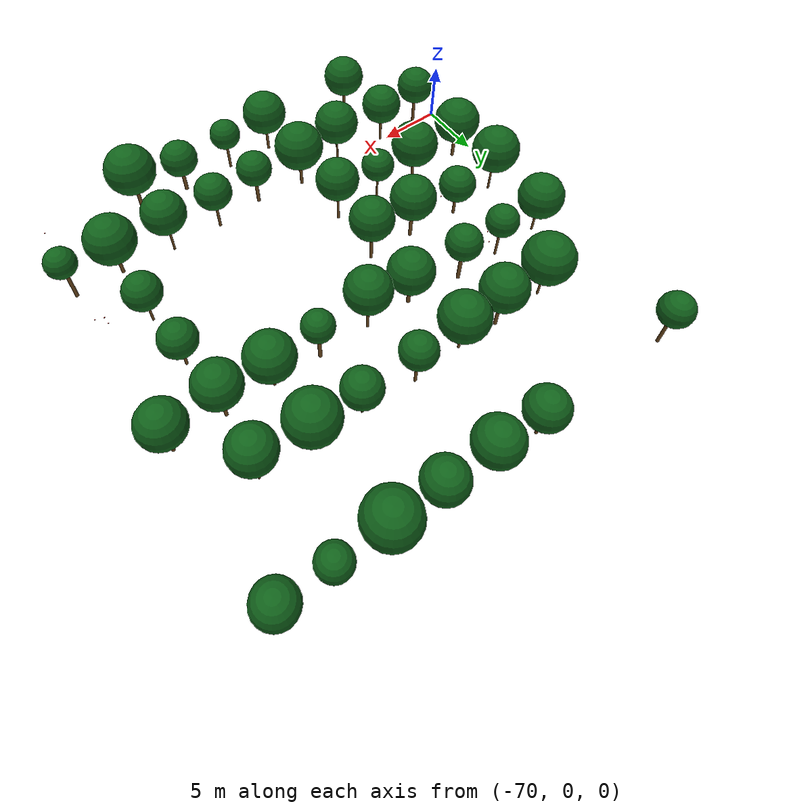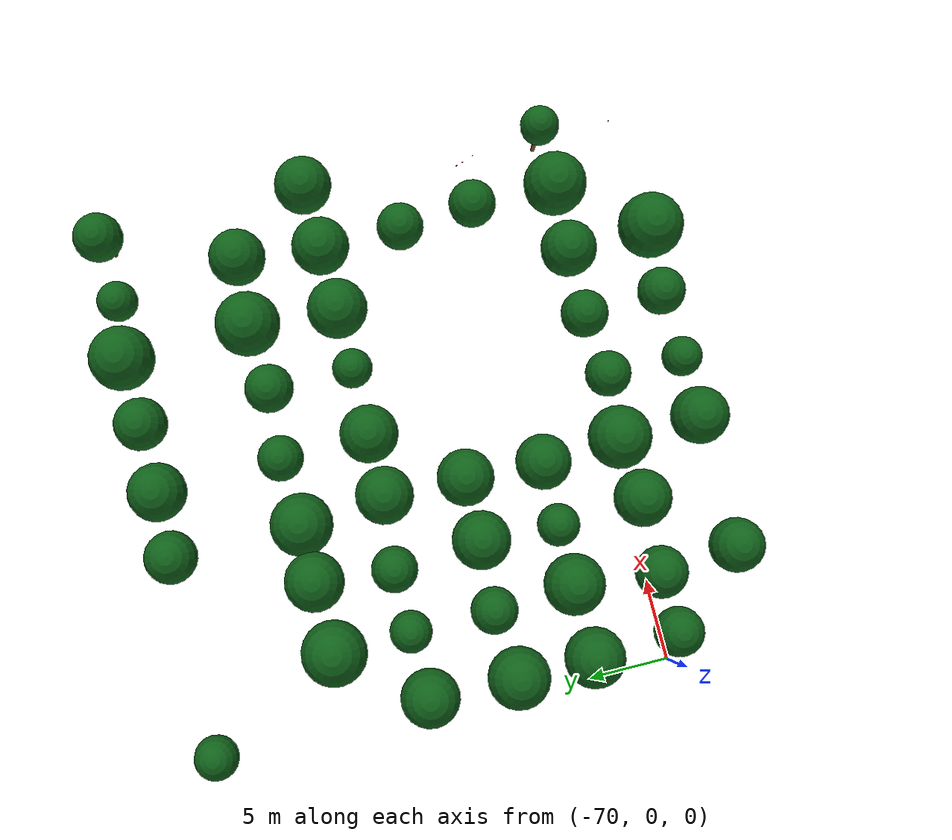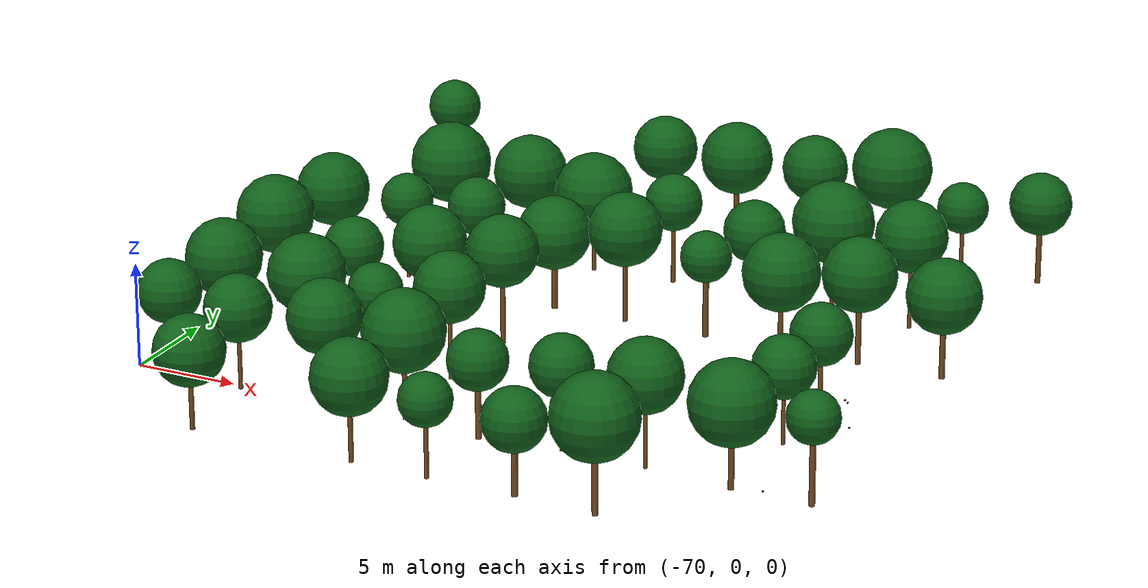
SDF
<sdf version="1.9">
 <world name="cheongsong_orchard">
  <model name="apple_tree_1183">
   <static>true</static>
   <pose>-64.03 -5.07 0 0 0 0</pose>
   <link name="link">
    <collision name="trunk_col">
     <pose>0 0 1.08 0 0 0</pose>
     <geometry><cylinder><radius>0.111</radius><length>2.15</length></cylinder></geometry>
    </collision>
    <visual name="trunk_vis">
     <pose>0 0 1.08 0 0 0</pose>
     <geometry><cylinder><radius>0.111</radius><length>2.15</length></cylinder></geometry>
     <material><ambient>0.35 0.22 0.08 1</ambient><diffuse>0.45 0.30 0.12 1</diffuse></material>
    </visual>
    <collision name="canopy_col">
     <pose>0 0 3.80 0 0 0</pose>
     <geometry><sphere><radius>1.65</radius></sphere></geometry>
    </collision>
    <visual name="canopy_vis">
     <pose>0 0 3.80 0 0 0</pose>
     <geometry><sphere><radius>1.65</radius></sphere></geometry>
     <material><ambient>0.04 0.28 0.06 1</ambient><diffuse>0.06 0.38 0.10 1</diffuse></material>
    </visual>
   </link>
  </model>
  <model name="apple_tree_1185">
   <static>true</static>
   <pose>-56.00 -4.99 0 0 0 0</pose>
   <link name="link">
    <collision name="trunk_col">
     <pose>0 0 1.14 0 0 0</pose>
     <geometry><cylinder><radius>0.109</radius><length>2.28</length></cylinder></geometry>
    </collision>
    <visual name="trunk_vis">
     <pose>0 0 1.14 0 0 0</pose>
     <geometry><cylinder><radius>0.109</radius><length>2.28</length></cylinder></geometry>
     <material><ambient>0.35 0.22 0.08 1</ambient><diffuse>0.45 0.30 0.12 1</diffuse></material>
    </visual>
    <collision name="canopy_col">
     <pose>0 0 4.03 0 0 0</pose>
     <geometry><sphere><radius>1.75</radius></sphere></geometry>
    </collision>
    <visual name="canopy_vis">
     <pose>0 0 4.03 0 0 0</pose>
     <geometry><sphere><radius>1.75</radius></sphere></geometry>
     <material><ambient>0.04 0.28 0.06 1</ambient><diffuse>0.06 0.38 0.10 1</diffuse></material>
    </visual>
   </link>
  </model>
  <model name="apple_tree_1186">
   <static>true</static>
   <pose>-52.25 -5.02 0 0 0 0</pose>
   <link name="link">
    <collision name="trunk_col">
     <pose>0 0 1.24 0 0 0</pose>
     <geometry><cylinder><radius>0.103</radius><length>2.47</length></cylinder></geometry>
    </collision>
    <visual name="trunk_vis">
     <pose>0 0 1.24 0 0 0</pose>
     <geometry><cylinder><radius>0.103</radius><length>2.47</length></cylinder></geometry>
     <material><ambient>0.35 0.22 0.08 1</ambient><diffuse>0.45 0.30 0.12 1</diffuse></material>
    </visual>
    <collision name="canopy_col">
     <pose>0 0 3.69 0 0 0</pose>
     <geometry><sphere><radius>1.22</radius></sphere></geometry>
    </collision>
    <visual name="canopy_vis">
     <pose>0 0 3.69 0 0 0</pose>
     <geometry><sphere><radius>1.22</radius></sphere></geometry>
     <material><ambient>0.04 0.28 0.06 1</ambient><diffuse>0.06 0.38 0.10 1</diffuse></material>
    </visual>
   </link>
  </model>
  <model name="apple_tree_1187">
   <static>true</static>
   <pose>-48.02 -4.94 0 0 0 0</pose>
   <link name="link">
    <collision name="trunk_col">
     <pose>0 0 1.05 0 0 0</pose>
     <geometry><cylinder><radius>0.147</radius><length>2.10</length></cylinder></geometry>
    </collision>
    <visual name="trunk_vis">
     <pose>0 0 1.05 0 0 0</pose>
     <geometry><cylinder><radius>0.147</radius><length>2.10</length></cylinder></geometry>
     <material><ambient>0.35 0.22 0.08 1</ambient><diffuse>0.45 0.30 0.12 1</diffuse></material>
    </visual>
    <collision name="canopy_col">
     <pose>0 0 3.56 0 0 0</pose>
     <geometry><sphere><radius>1.46</radius></sphere></geometry>
    </collision>
    <visual name="canopy_vis">
     <pose>0 0 3.56 0 0 0</pose>
     <geometry><sphere><radius>1.46</radius></sphere></geometry>
     <material><ambient>0.04 0.28 0.06 1</ambient><diffuse>0.06 0.38 0.10 1</diffuse></material>
    </visual>
   </link>
  </model>
  <model name="apple_tree_1188">
   <static>true</static>
   <pose>-44.11 -5.13 0 0 0 0</pose>
   <link name="link">
    <collision name="trunk_col">
     <pose>0 0 1.27 0 0 0</pose>
     <geometry><cylinder><radius>0.141</radius><length>2.54</length></cylinder></geometry>
    </collision>
    <visual name="trunk_vis">
     <pose>0 0 1.27 0 0 0</pose>
     <geometry><cylinder><radius>0.141</radius><length>2.54</length></cylinder></geometry>
     <material><ambient>0.35 0.22 0.08 1</ambient><diffuse>0.45 0.30 0.12 1</diffuse></material>
    </visual>
    <collision name="canopy_col">
     <pose>0 0 4.53 0 0 0</pose>
     <geometry><sphere><radius>1.98</radius></sphere></geometry>
    </collision>
    <visual name="canopy_vis">
     <pose>0 0 4.53 0 0 0</pose>
     <geometry><sphere><radius>1.98</radius></sphere></geometry>
     <material><ambient>0.04 0.28 0.06 1</ambient><diffuse>0.06 0.38 0.10 1</diffuse></material>
    </visual>
   </link>
  </model>
  <model name="apple_tree_1238">
   <static>true</static>
   <pose>-68.04 -0.28 0 0 0 0</pose>
   <link name="link">
    <collision name="trunk_col">
     <pose>0 0 1.32 0 0 0</pose>
     <geometry><cylinder><radius>0.124</radius><length>2.64</length></cylinder></geometry>
    </collision>
    <visual name="trunk_vis">
     <pose>0 0 1.32 0 0 0</pose>
     <geometry><cylinder><radius>0.124</radius><length>2.64</length></cylinder></geometry>
     <material><ambient>0.35 0.22 0.08 1</ambient><diffuse>0.45 0.30 0.12 1</diffuse></material>
    </visual>
    <collision name="canopy_col">
     <pose>0 0 4.14 0 0 0</pose>
     <geometry><sphere><radius>1.49</radius></sphere></geometry>
    </collision>
    <visual name="canopy_vis">
     <pose>0 0 4.14 0 0 0</pose>
     <geometry><sphere><radius>1.49</radius></sphere></geometry>
     <material><ambient>0.04 0.28 0.06 1</ambient><diffuse>0.06 0.38 0.10 1</diffuse></material>
    </visual>
   </link>
  </model>
  <model name="apple_tree_1239">
   <static>true</static>
   <pose>-64.45 -0.26 0 0 0 0</pose>
   <link name="link">
    <collision name="trunk_col">
     <pose>0 0 1.18 0 0 0</pose>
     <geometry><cylinder><radius>0.097</radius><length>2.36</length></cylinder></geometry>
    </collision>
    <visual name="trunk_vis">
     <pose>0 0 1.18 0 0 0</pose>
     <geometry><cylinder><radius>0.097</radius><length>2.36</length></cylinder></geometry>
     <material><ambient>0.35 0.22 0.08 1</ambient><diffuse>0.45 0.30 0.12 1</diffuse></material>
    </visual>
    <collision name="canopy_col">
     <pose>0 0 3.95 0 0 0</pose>
     <geometry><sphere><radius>1.58</radius></sphere></geometry>
    </collision>
    <visual name="canopy_vis">
     <pose>0 0 3.95 0 0 0</pose>
     <geometry><sphere><radius>1.58</radius></sphere></geometry>
     <material><ambient>0.04 0.28 0.06 1</ambient><diffuse>0.06 0.38 0.10 1</diffuse></material>
    </visual>
   </link>
  </model>
  <model name="apple_tree_1240">
   <static>true</static>
   <pose>-59.94 -0.27 0 0 0 0</pose>
   <link name="link">
    <collision name="trunk_col">
     <pose>0 0 1.32 0 0 0</pose>
     <geometry><cylinder><radius>0.082</radius><length>2.64</length></cylinder></geometry>
    </collision>
    <visual name="trunk_vis">
     <pose>0 0 1.32 0 0 0</pose>
     <geometry><cylinder><radius>0.082</radius><length>2.64</length></cylinder></geometry>
     <material><ambient>0.35 0.22 0.08 1</ambient><diffuse>0.45 0.30 0.12 1</diffuse></material>
    </visual>
    <collision name="canopy_col">
     <pose>0 0 4.37 0 0 0</pose>
     <geometry><sphere><radius>1.73</radius></sphere></geometry>
    </collision>
    <visual name="canopy_vis">
     <pose>0 0 4.37 0 0 0</pose>
     <geometry><sphere><radius>1.73</radius></sphere></geometry>
     <material><ambient>0.04 0.28 0.06 1</ambient><diffuse>0.06 0.38 0.10 1</diffuse></material>
    </visual>
   </link>
  </model>
  <model name="apple_tree_1241">
   <static>true</static>
   <pose>-56.10 0.06 0 0 0 0</pose>
   <link name="link">
    <collision name="trunk_col">
     <pose>0 0 1.17 0 0 0</pose>
     <geometry><cylinder><radius>0.121</radius><length>2.34</length></cylinder></geometry>
    </collision>
    <visual name="trunk_vis">
     <pose>0 0 1.17 0 0 0</pose>
     <geometry><cylinder><radius>0.121</radius><length>2.34</length></cylinder></geometry>
     <material><ambient>0.35 0.22 0.08 1</ambient><diffuse>0.45 0.30 0.12 1</diffuse></material>
    </visual>
    <collision name="canopy_col">
     <pose>0 0 4.26 0 0 0</pose>
     <geometry><sphere><radius>1.92</radius></sphere></geometry>
    </collision>
    <visual name="canopy_vis">
     <pose>0 0 4.26 0 0 0</pose>
     <geometry><sphere><radius>1.92</radius></sphere></geometry>
     <material><ambient>0.04 0.28 0.06 1</ambient><diffuse>0.06 0.38 0.10 1</diffuse></material>
    </visual>
   </link>
  </model>
  <model name="apple_tree_1242">
   <static>true</static>
   <pose>-52.18 -0.38 0 0 0 0</pose>
   <link name="link">
    <collision name="trunk_col">
     <pose>0 0 1.18 0 0 0</pose>
     <geometry><cylinder><radius>0.138</radius><length>2.36</length></cylinder></geometry>
    </collision>
    <visual name="trunk_vis">
     <pose>0 0 1.18 0 0 0</pose>
     <geometry><cylinder><radius>0.138</radius><length>2.36</length></cylinder></geometry>
     <material><ambient>0.35 0.22 0.08 1</ambient><diffuse>0.45 0.30 0.12 1</diffuse></material>
    </visual>
    <collision name="canopy_col">
     <pose>0 0 3.76 0 0 0</pose>
     <geometry><sphere><radius>1.40</radius></sphere></geometry>
    </collision>
    <visual name="canopy_vis">
     <pose>0 0 3.76 0 0 0</pose>
     <geometry><sphere><radius>1.40</radius></sphere></geometry>
     <material><ambient>0.04 0.28 0.06 1</ambient><diffuse>0.06 0.38 0.10 1</diffuse></material>
    </visual>
   </link>
  </model>
  <model name="apple_tree_1243">
   <static>true</static>
   <pose>-48.31 0.09 0 0 0 0</pose>
   <link name="link">
    <collision name="trunk_col">
     <pose>0 0 1.30 0 0 0</pose>
     <geometry><cylinder><radius>0.107</radius><length>2.59</length></cylinder></geometry>
    </collision>
    <visual name="trunk_vis">
     <pose>0 0 1.30 0 0 0</pose>
     <geometry><cylinder><radius>0.107</radius><length>2.59</length></cylinder></geometry>
     <material><ambient>0.35 0.22 0.08 1</ambient><diffuse>0.45 0.30 0.12 1</diffuse></material>
    </visual>
    <collision name="canopy_col">
     <pose>0 0 4.04 0 0 0</pose>
     <geometry><sphere><radius>1.45</radius></sphere></geometry>
    </collision>
    <visual name="canopy_vis">
     <pose>0 0 4.04 0 0 0</pose>
     <geometry><sphere><radius>1.45</radius></sphere></geometry>
     <material><ambient>0.04 0.28 0.06 1</ambient><diffuse>0.06 0.38 0.10 1</diffuse></material>
    </visual>
   </link>
  </model>
  <model name="apple_tree_1244">
   <static>true</static>
   <pose>-44.24 0.04 0 0 0 0</pose>
   <link name="link">
    <collision name="trunk_col">
     <pose>0 0 1.33 0 0 0</pose>
     <geometry><cylinder><radius>0.086</radius><length>2.66</length></cylinder></geometry>
    </collision>
    <visual name="trunk_vis">
     <pose>0 0 1.33 0 0 0</pose>
     <geometry><cylinder><radius>0.086</radius><length>2.66</length></cylinder></geometry>
     <material><ambient>0.35 0.22 0.08 1</ambient><diffuse>0.45 0.30 0.12 1</diffuse></material>
    </visual>
    <collision name="canopy_col">
     <pose>0 0 4.37 0 0 0</pose>
     <geometry><sphere><radius>1.71</radius></sphere></geometry>
    </collision>
    <visual name="canopy_vis">
     <pose>0 0 4.37 0 0 0</pose>
     <geometry><sphere><radius>1.71</radius></sphere></geometry>
     <material><ambient>0.04 0.28 0.06 1</ambient><diffuse>0.06 0.38 0.10 1</diffuse></material>
    </visual>
   </link>
  </model>
  <model name="apple_tree_1245">
   <static>true</static>
   <pose>-40.02 -0.28 0 0 0 0</pose>
   <link name="link">
    <collision name="trunk_col">
     <pose>0 0 1.04 0 0 0</pose>
     <geometry><cylinder><radius>0.132</radius><length>2.09</length></cylinder></geometry>
    </collision>
    <visual name="trunk_vis">
     <pose>0 0 1.04 0 0 0</pose>
     <geometry><cylinder><radius>0.132</radius><length>2.09</length></cylinder></geometry>
     <material><ambient>0.35 0.22 0.08 1</ambient><diffuse>0.45 0.30 0.12 1</diffuse></material>
    </visual>
    <collision name="canopy_col">
     <pose>0 0 4.03 0 0 0</pose>
     <geometry><sphere><radius>1.94</radius></sphere></geometry>
    </collision>
    <visual name="canopy_vis">
     <pose>0 0 4.03 0 0 0</pose>
     <geometry><sphere><radius>1.94</radius></sphere></geometry>
     <material><ambient>0.04 0.28 0.06 1</ambient><diffuse>0.06 0.38 0.10 1</diffuse></material>
    </visual>
   </link>
  </model>
  <model name="apple_tree_1246">
   <static>true</static>
   <pose>-36.25 -0.30 0 0 0 0</pose>
   <link name="link">
    <collision name="trunk_col">
     <pose>0 0 1.46 0 0 0</pose>
     <geometry><cylinder><radius>0.137</radius><length>2.91</length></cylinder></geometry>
    </collision>
    <visual name="trunk_vis">
     <pose>0 0 1.46 0 0 0</pose>
     <geometry><cylinder><radius>0.137</radius><length>2.91</length></cylinder></geometry>
     <material><ambient>0.35 0.22 0.08 1</ambient><diffuse>0.45 0.30 0.12 1</diffuse></material>
    </visual>
    <collision name="canopy_col">
     <pose>0 0 4.11 0 0 0</pose>
     <geometry><sphere><radius>1.20</radius></sphere></geometry>
    </collision>
    <visual name="canopy_vis">
     <pose>0 0 4.11 0 0 0</pose>
     <geometry><sphere><radius>1.20</radius></sphere></geometry>
     <material><ambient>0.04 0.28 0.06 1</ambient><diffuse>0.06 0.38 0.10 1</diffuse></material>
    </visual>
   </link>
  </model>
  <model name="apple_tree_1285">
   <static>true</static>
   <pose>-68.31 4.87 0 0 0 0</pose>
   <link name="link">
    <collision name="trunk_col">
     <pose>0 0 1.06 0 0 0</pose>
     <geometry><cylinder><radius>0.132</radius><length>2.12</length></cylinder></geometry>
    </collision>
    <visual name="trunk_vis">
     <pose>0 0 1.06 0 0 0</pose>
     <geometry><cylinder><radius>0.132</radius><length>2.12</length></cylinder></geometry>
     <material><ambient>0.35 0.22 0.08 1</ambient><diffuse>0.45 0.30 0.12 1</diffuse></material>
    </visual>
    <collision name="canopy_col">
     <pose>0 0 3.94 0 0 0</pose>
     <geometry><sphere><radius>1.82</radius></sphere></geometry>
    </collision>
    <visual name="canopy_vis">
     <pose>0 0 3.94 0 0 0</pose>
     <geometry><sphere><radius>1.82</radius></sphere></geometry>
     <material><ambient>0.04 0.28 0.06 1</ambient><diffuse>0.06 0.38 0.10 1</diffuse></material>
    </visual>
   </link>
  </model>
  <model name="apple_tree_1286">
   <static>true</static>
   <pose>-63.89 4.91 0 0 0 0</pose>
   <link name="link">
    <collision name="trunk_col">
     <pose>0 0 1.02 0 0 0</pose>
     <geometry><cylinder><radius>0.112</radius><length>2.04</length></cylinder></geometry>
    </collision>
    <visual name="trunk_vis">
     <pose>0 0 1.02 0 0 0</pose>
     <geometry><cylinder><radius>0.112</radius><length>2.04</length></cylinder></geometry>
     <material><ambient>0.35 0.22 0.08 1</ambient><diffuse>0.45 0.30 0.12 1</diffuse></material>
    </visual>
    <collision name="canopy_col">
     <pose>0 0 3.89 0 0 0</pose>
     <geometry><sphere><radius>1.85</radius></sphere></geometry>
    </collision>
    <visual name="canopy_vis">
     <pose>0 0 3.89 0 0 0</pose>
     <geometry><sphere><radius>1.85</radius></sphere></geometry>
     <material><ambient>0.04 0.28 0.06 1</ambient><diffuse>0.06 0.38 0.10 1</diffuse></material>
    </visual>
   </link>
  </model>
  <model name="apple_tree_1287">
   <static>true</static>
   <pose>-60.26 4.89 0 0 0 0</pose>
   <link name="link">
    <collision name="trunk_col">
     <pose>0 0 1.19 0 0 0</pose>
     <geometry><cylinder><radius>0.081</radius><length>2.38</length></cylinder></geometry>
    </collision>
    <visual name="trunk_vis">
     <pose>0 0 1.19 0 0 0</pose>
     <geometry><cylinder><radius>0.081</radius><length>2.38</length></cylinder></geometry>
     <material><ambient>0.35 0.22 0.08 1</ambient><diffuse>0.45 0.30 0.12 1</diffuse></material>
    </visual>
    <collision name="canopy_col">
     <pose>0 0 3.68 0 0 0</pose>
     <geometry><sphere><radius>1.29</radius></sphere></geometry>
    </collision>
    <visual name="canopy_vis">
     <pose>0 0 3.68 0 0 0</pose>
     <geometry><sphere><radius>1.29</radius></sphere></geometry>
     <material><ambient>0.04 0.28 0.06 1</ambient><diffuse>0.06 0.38 0.10 1</diffuse></material>
    </visual>
   </link>
  </model>
  <model name="apple_tree_1288">
   <static>true</static>
   <pose>-56.42 4.90 0 0 0 0</pose>
   <link name="link">
    <collision name="trunk_col">
     <pose>0 0 1.42 0 0 0</pose>
     <geometry><cylinder><radius>0.096</radius><length>2.84</length></cylinder></geometry>
    </collision>
    <visual name="trunk_vis">
     <pose>0 0 1.42 0 0 0</pose>
     <geometry><cylinder><radius>0.096</radius><length>2.84</length></cylinder></geometry>
     <material><ambient>0.35 0.22 0.08 1</ambient><diffuse>0.45 0.30 0.12 1</diffuse></material>
    </visual>
    <collision name="canopy_col">
     <pose>0 0 4.51 0 0 0</pose>
     <geometry><sphere><radius>1.67</radius></sphere></geometry>
    </collision>
    <visual name="canopy_vis">
     <pose>0 0 4.51 0 0 0</pose>
     <geometry><sphere><radius>1.67</radius></sphere></geometry>
     <material><ambient>0.04 0.28 0.06 1</ambient><diffuse>0.06 0.38 0.10 1</diffuse></material>
    </visual>
   </link>
  </model>
  <model name="apple_tree_1289">
   <static>true</static>
   <pose>-39.89 4.93 0 0 0 0</pose>
   <link name="link">
    <collision name="trunk_col">
     <pose>0 0 1.12 0 0 0</pose>
     <geometry><cylinder><radius>0.089</radius><length>2.24</length></cylinder></geometry>
    </collision>
    <visual name="trunk_vis">
     <pose>0 0 1.12 0 0 0</pose>
     <geometry><cylinder><radius>0.089</radius><length>2.24</length></cylinder></geometry>
     <material><ambient>0.35 0.22 0.08 1</ambient><diffuse>0.45 0.30 0.12 1</diffuse></material>
    </visual>
    <collision name="canopy_col">
     <pose>0 0 3.70 0 0 0</pose>
     <geometry><sphere><radius>1.46</radius></sphere></geometry>
    </collision>
    <visual name="canopy_vis">
     <pose>0 0 3.70 0 0 0</pose>
     <geometry><sphere><radius>1.46</radius></sphere></geometry>
     <material><ambient>0.04 0.28 0.06 1</ambient><diffuse>0.06 0.38 0.10 1</diffuse></material>
    </visual>
   </link>
  </model>
  <model name="apple_tree_1329">
   <static>true</static>
   <pose>-68.28 9.52 0 0 0 0</pose>
   <link name="link">
    <collision name="trunk_col">
     <pose>0 0 1.31 0 0 0</pose>
     <geometry><cylinder><radius>0.084</radius><length>2.62</length></cylinder></geometry>
    </collision>
    <visual name="trunk_vis">
     <pose>0 0 1.31 0 0 0</pose>
     <geometry><cylinder><radius>0.084</radius><length>2.62</length></cylinder></geometry>
     <material><ambient>0.35 0.22 0.08 1</ambient><diffuse>0.45 0.30 0.12 1</diffuse></material>
    </visual>
    <collision name="canopy_col">
     <pose>0 0 4.48 0 0 0</pose>
     <geometry><sphere><radius>1.86</radius></sphere></geometry>
    </collision>
    <visual name="canopy_vis">
     <pose>0 0 4.48 0 0 0</pose>
     <geometry><sphere><radius>1.86</radius></sphere></geometry>
     <material><ambient>0.04 0.28 0.06 1</ambient><diffuse>0.06 0.38 0.10 1</diffuse></material>
    </visual>
   </link>
  </model>
  <model name="apple_tree_1330">
   <static>true</static>
   <pose>-64.23 9.87 0 0 0 0</pose>
   <link name="link">
    <collision name="trunk_col">
     <pose>0 0 0.98 0 0 0</pose>
     <geometry><cylinder><radius>0.114</radius><length>1.96</length></cylinder></geometry>
    </collision>
    <visual name="trunk_vis">
     <pose>0 0 0.98 0 0 0</pose>
     <geometry><cylinder><radius>0.114</radius><length>1.96</length></cylinder></geometry>
     <material><ambient>0.35 0.22 0.08 1</ambient><diffuse>0.45 0.30 0.12 1</diffuse></material>
    </visual>
    <collision name="canopy_col">
     <pose>0 0 3.38 0 0 0</pose>
     <geometry><sphere><radius>1.43</radius></sphere></geometry>
    </collision>
    <visual name="canopy_vis">
     <pose>0 0 3.38 0 0 0</pose>
     <geometry><sphere><radius>1.43</radius></sphere></geometry>
     <material><ambient>0.04 0.28 0.06 1</ambient><diffuse>0.06 0.38 0.10 1</diffuse></material>
    </visual>
   </link>
  </model>
  <model name="apple_tree_1331">
   <static>true</static>
   <pose>-60.00 9.63 0 0 0 0</pose>
   <link name="link">
    <collision name="trunk_col">
     <pose>0 0 1.32 0 0 0</pose>
     <geometry><cylinder><radius>0.137</radius><length>2.64</length></cylinder></geometry>
    </collision>
    <visual name="trunk_vis">
     <pose>0 0 1.32 0 0 0</pose>
     <geometry><cylinder><radius>0.137</radius><length>2.64</length></cylinder></geometry>
     <material><ambient>0.35 0.22 0.08 1</ambient><diffuse>0.45 0.30 0.12 1</diffuse></material>
    </visual>
    <collision name="canopy_col">
     <pose>0 0 4.40 0 0 0</pose>
     <geometry><sphere><radius>1.76</radius></sphere></geometry>
    </collision>
    <visual name="canopy_vis">
     <pose>0 0 4.40 0 0 0</pose>
     <geometry><sphere><radius>1.76</radius></sphere></geometry>
     <material><ambient>0.04 0.28 0.06 1</ambient><diffuse>0.06 0.38 0.10 1</diffuse></material>
    </visual>
   </link>
  </model>
  <model name="apple_tree_1332">
   <static>true</static>
   <pose>-56.19 9.62 0 0 0 0</pose>
   <link name="link">
    <collision name="trunk_col">
     <pose>0 0 1.46 0 0 0</pose>
     <geometry><cylinder><radius>0.121</radius><length>2.92</length></cylinder></geometry>
    </collision>
    <visual name="trunk_vis">
     <pose>0 0 1.46 0 0 0</pose>
     <geometry><cylinder><radius>0.121</radius><length>2.92</length></cylinder></geometry>
     <material><ambient>0.35 0.22 0.08 1</ambient><diffuse>0.45 0.30 0.12 1</diffuse></material>
    </visual>
    <collision name="canopy_col">
     <pose>0 0 4.63 0 0 0</pose>
     <geometry><sphere><radius>1.71</radius></sphere></geometry>
    </collision>
    <visual name="canopy_vis">
     <pose>0 0 4.63 0 0 0</pose>
     <geometry><sphere><radius>1.71</radius></sphere></geometry>
     <material><ambient>0.04 0.28 0.06 1</ambient><diffuse>0.06 0.38 0.10 1</diffuse></material>
    </visual>
   </link>
  </model>
  <model name="apple_tree_1333">
   <static>true</static>
   <pose>-40.12 9.57 0 0 0 0</pose>
   <link name="link">
    <collision name="trunk_col">
     <pose>0 0 1.00 0 0 0</pose>
     <geometry><cylinder><radius>0.109</radius><length>2.00</length></cylinder></geometry>
    </collision>
    <visual name="trunk_vis">
     <pose>0 0 1.00 0 0 0</pose>
     <geometry><cylinder><radius>0.109</radius><length>2.00</length></cylinder></geometry>
     <material><ambient>0.35 0.22 0.08 1</ambient><diffuse>0.45 0.30 0.12 1</diffuse></material>
    </visual>
    <collision name="canopy_col">
     <pose>0 0 3.44 0 0 0</pose>
     <geometry><sphere><radius>1.45</radius></sphere></geometry>
    </collision>
    <visual name="canopy_vis">
     <pose>0 0 3.44 0 0 0</pose>
     <geometry><sphere><radius>1.45</radius></sphere></geometry>
     <material><ambient>0.04 0.28 0.06 1</ambient><diffuse>0.06 0.38 0.10 1</diffuse></material>
    </visual>
   </link>
  </model>
  <model name="apple_tree_1379">
   <static>true</static>
   <pose>-68.19 14.83 0 0 0 0</pose>
   <link name="link">
    <collision name="trunk_col">
     <pose>0 0 1.09 0 0 0</pose>
     <geometry><cylinder><radius>0.086</radius><length>2.17</length></cylinder></geometry>
    </collision>
    <visual name="trunk_vis">
     <pose>0 0 1.09 0 0 0</pose>
     <geometry><cylinder><radius>0.086</radius><length>2.17</length></cylinder></geometry>
     <material><ambient>0.35 0.22 0.08 1</ambient><diffuse>0.45 0.30 0.12 1</diffuse></material>
    </visual>
    <collision name="canopy_col">
     <pose>0 0 3.95 0 0 0</pose>
     <geometry><sphere><radius>1.77</radius></sphere></geometry>
    </collision>
    <visual name="canopy_vis">
     <pose>0 0 3.95 0 0 0</pose>
     <geometry><sphere><radius>1.77</radius></sphere></geometry>
     <material><ambient>0.04 0.28 0.06 1</ambient><diffuse>0.06 0.38 0.10 1</diffuse></material>
    </visual>
   </link>
  </model>
  <model name="apple_tree_1380">
   <static>true</static>
   <pose>-64.17 14.98 0 0 0 0</pose>
   <link name="link">
    <collision name="trunk_col">
     <pose>0 0 1.37 0 0 0</pose>
     <geometry><cylinder><radius>0.095</radius><length>2.74</length></cylinder></geometry>
    </collision>
    <visual name="trunk_vis">
     <pose>0 0 1.37 0 0 0</pose>
     <geometry><cylinder><radius>0.095</radius><length>2.74</length></cylinder></geometry>
     <material><ambient>0.35 0.22 0.08 1</ambient><diffuse>0.45 0.30 0.12 1</diffuse></material>
    </visual>
    <collision name="canopy_col">
     <pose>0 0 4.01 0 0 0</pose>
     <geometry><sphere><radius>1.27</radius></sphere></geometry>
    </collision>
    <visual name="canopy_vis">
     <pose>0 0 4.01 0 0 0</pose>
     <geometry><sphere><radius>1.27</radius></sphere></geometry>
     <material><ambient>0.04 0.28 0.06 1</ambient><diffuse>0.06 0.38 0.10 1</diffuse></material>
    </visual>
   </link>
  </model>
  <model name="apple_tree_1381">
   <static>true</static>
   <pose>-60.40 15.02 0 0 0 0</pose>
   <link name="link">
    <collision name="trunk_col">
     <pose>0 0 1.45 0 0 0</pose>
     <geometry><cylinder><radius>0.144</radius><length>2.90</length></cylinder></geometry>
    </collision>
    <visual name="trunk_vis">
     <pose>0 0 1.45 0 0 0</pose>
     <geometry><cylinder><radius>0.144</radius><length>2.90</length></cylinder></geometry>
     <material><ambient>0.35 0.22 0.08 1</ambient><diffuse>0.45 0.30 0.12 1</diffuse></material>
    </visual>
    <collision name="canopy_col">
     <pose>0 0 4.29 0 0 0</pose>
     <geometry><sphere><radius>1.39</radius></sphere></geometry>
    </collision>
    <visual name="canopy_vis">
     <pose>0 0 4.29 0 0 0</pose>
     <geometry><sphere><radius>1.39</radius></sphere></geometry>
     <material><ambient>0.04 0.28 0.06 1</ambient><diffuse>0.06 0.38 0.10 1</diffuse></material>
    </visual>
   </link>
  </model>
  <model name="apple_tree_1382">
   <static>true</static>
   <pose>-55.99 14.54 0 0 0 0</pose>
   <link name="link">
    <collision name="trunk_col">
     <pose>0 0 1.04 0 0 0</pose>
     <geometry><cylinder><radius>0.147</radius><length>2.08</length></cylinder></geometry>
    </collision>
    <visual name="trunk_vis">
     <pose>0 0 1.04 0 0 0</pose>
     <geometry><cylinder><radius>0.147</radius><length>2.08</length></cylinder></geometry>
     <material><ambient>0.35 0.22 0.08 1</ambient><diffuse>0.45 0.30 0.12 1</diffuse></material>
    </visual>
    <collision name="canopy_col">
     <pose>0 0 3.85 0 0 0</pose>
     <geometry><sphere><radius>1.76</radius></sphere></geometry>
    </collision>
    <visual name="canopy_vis">
     <pose>0 0 3.85 0 0 0</pose>
     <geometry><sphere><radius>1.76</radius></sphere></geometry>
     <material><ambient>0.04 0.28 0.06 1</ambient><diffuse>0.06 0.38 0.10 1</diffuse></material>
    </visual>
   </link>
  </model>
  <model name="apple_tree_1383">
   <static>true</static>
   <pose>-52.26 14.53 0 0 0 0</pose>
   <link name="link">
    <collision name="trunk_col">
     <pose>0 0 1.45 0 0 0</pose>
     <geometry><cylinder><radius>0.106</radius><length>2.89</length></cylinder></geometry>
    </collision>
    <visual name="trunk_vis">
     <pose>0 0 1.45 0 0 0</pose>
     <geometry><cylinder><radius>0.106</radius><length>2.89</length></cylinder></geometry>
     <material><ambient>0.35 0.22 0.08 1</ambient><diffuse>0.45 0.30 0.12 1</diffuse></material>
    </visual>
    <collision name="canopy_col">
     <pose>0 0 4.65 0 0 0</pose>
     <geometry><sphere><radius>1.76</radius></sphere></geometry>
    </collision>
    <visual name="canopy_vis">
     <pose>0 0 4.65 0 0 0</pose>
     <geometry><sphere><radius>1.76</radius></sphere></geometry>
     <material><ambient>0.04 0.28 0.06 1</ambient><diffuse>0.06 0.38 0.10 1</diffuse></material>
    </visual>
   </link>
  </model>
  <model name="apple_tree_1384">
   <static>true</static>
   <pose>-48.09 14.55 0 0 0 0</pose>
   <link name="link">
    <collision name="trunk_col">
     <pose>0 0 1.38 0 0 0</pose>
     <geometry><cylinder><radius>0.141</radius><length>2.77</length></cylinder></geometry>
    </collision>
    <visual name="trunk_vis">
     <pose>0 0 1.38 0 0 0</pose>
     <geometry><cylinder><radius>0.141</radius><length>2.77</length></cylinder></geometry>
     <material><ambient>0.35 0.22 0.08 1</ambient><diffuse>0.45 0.30 0.12 1</diffuse></material>
    </visual>
    <collision name="canopy_col">
     <pose>0 0 3.99 0 0 0</pose>
     <geometry><sphere><radius>1.22</radius></sphere></geometry>
    </collision>
    <visual name="canopy_vis">
     <pose>0 0 3.99 0 0 0</pose>
     <geometry><sphere><radius>1.22</radius></sphere></geometry>
     <material><ambient>0.04 0.28 0.06 1</ambient><diffuse>0.06 0.38 0.10 1</diffuse></material>
    </visual>
   </link>
  </model>
  <model name="apple_tree_1385">
   <static>true</static>
   <pose>-44.27 14.56 0 0 0 0</pose>
   <link name="link">
    <collision name="trunk_col">
     <pose>0 0 1.01 0 0 0</pose>
     <geometry><cylinder><radius>0.120</radius><length>2.03</length></cylinder></geometry>
    </collision>
    <visual name="trunk_vis">
     <pose>0 0 1.01 0 0 0</pose>
     <geometry><cylinder><radius>0.120</radius><length>2.03</length></cylinder></geometry>
     <material><ambient>0.35 0.22 0.08 1</ambient><diffuse>0.45 0.30 0.12 1</diffuse></material>
    </visual>
    <collision name="canopy_col">
     <pose>0 0 3.88 0 0 0</pose>
     <geometry><sphere><radius>1.85</radius></sphere></geometry>
    </collision>
    <visual name="canopy_vis">
     <pose>0 0 3.88 0 0 0</pose>
     <geometry><sphere><radius>1.85</radius></sphere></geometry>
     <material><ambient>0.04 0.28 0.06 1</ambient><diffuse>0.06 0.38 0.10 1</diffuse></material>
    </visual>
   </link>
  </model>
  <model name="apple_tree_1386">
   <static>true</static>
   <pose>-40.40 14.62 0 0 0 0</pose>
   <link name="link">
    <collision name="trunk_col">
     <pose>0 0 1.34 0 0 0</pose>
     <geometry><cylinder><radius>0.132</radius><length>2.67</length></cylinder></geometry>
    </collision>
    <visual name="trunk_vis">
     <pose>0 0 1.34 0 0 0</pose>
     <geometry><cylinder><radius>0.132</radius><length>2.67</length></cylinder></geometry>
     <material><ambient>0.35 0.22 0.08 1</ambient><diffuse>0.45 0.30 0.12 1</diffuse></material>
    </visual>
    <collision name="canopy_col">
     <pose>0 0 4.43 0 0 0</pose>
     <geometry><sphere><radius>1.76</radius></sphere></geometry>
    </collision>
    <visual name="canopy_vis">
     <pose>0 0 4.43 0 0 0</pose>
     <geometry><sphere><radius>1.76</radius></sphere></geometry>
     <material><ambient>0.04 0.28 0.06 1</ambient><diffuse>0.06 0.38 0.10 1</diffuse></material>
    </visual>
   </link>
  </model>
  <model name="apple_tree_1387">
   <static>true</static>
   <pose>-36.31 14.76 0 0 0 0</pose>
   <link name="link">
    <collision name="trunk_col">
     <pose>0 0 1.14 0 0 0</pose>
     <geometry><cylinder><radius>0.135</radius><length>2.28</length></cylinder></geometry>
    </collision>
    <visual name="trunk_vis">
     <pose>0 0 1.14 0 0 0</pose>
     <geometry><cylinder><radius>0.135</radius><length>2.28</length></cylinder></geometry>
     <material><ambient>0.35 0.22 0.08 1</ambient><diffuse>0.45 0.30 0.12 1</diffuse></material>
    </visual>
    <collision name="canopy_col">
     <pose>0 0 4.04 0 0 0</pose>
     <geometry><sphere><radius>1.76</radius></sphere></geometry>
    </collision>
    <visual name="canopy_vis">
     <pose>0 0 4.04 0 0 0</pose>
     <geometry><sphere><radius>1.76</radius></sphere></geometry>
     <material><ambient>0.04 0.28 0.06 1</ambient><diffuse>0.06 0.38 0.10 1</diffuse></material>
    </visual>
   </link>
  </model>
  <model name="apple_tree_1432">
   <static>true</static>
   <pose>-64.26 19.63 0 0 0 0</pose>
   <link name="link">
    <collision name="trunk_col">
     <pose>0 0 1.20 0 0 0</pose>
     <geometry><cylinder><radius>0.089</radius><length>2.41</length></cylinder></geometry>
    </collision>
    <visual name="trunk_vis">
     <pose>0 0 1.20 0 0 0</pose>
     <geometry><cylinder><radius>0.089</radius><length>2.41</length></cylinder></geometry>
     <material><ambient>0.35 0.22 0.08 1</ambient><diffuse>0.45 0.30 0.12 1</diffuse></material>
    </visual>
    <collision name="canopy_col">
     <pose>0 0 4.38 0 0 0</pose>
     <geometry><sphere><radius>1.97</radius></sphere></geometry>
    </collision>
    <visual name="canopy_vis">
     <pose>0 0 4.38 0 0 0</pose>
     <geometry><sphere><radius>1.97</radius></sphere></geometry>
     <material><ambient>0.04 0.28 0.06 1</ambient><diffuse>0.06 0.38 0.10 1</diffuse></material>
    </visual>
   </link>
  </model>
  <model name="apple_tree_1433">
   <static>true</static>
   <pose>-59.94 19.76 0 0 0 0</pose>
   <link name="link">
    <collision name="trunk_col">
     <pose>0 0 1.37 0 0 0</pose>
     <geometry><cylinder><radius>0.129</radius><length>2.75</length></cylinder></geometry>
    </collision>
    <visual name="trunk_vis">
     <pose>0 0 1.37 0 0 0</pose>
     <geometry><cylinder><radius>0.129</radius><length>2.75</length></cylinder></geometry>
     <material><ambient>0.35 0.22 0.08 1</ambient><diffuse>0.45 0.30 0.12 1</diffuse></material>
    </visual>
    <collision name="canopy_col">
     <pose>0 0 4.54 0 0 0</pose>
     <geometry><sphere><radius>1.79</radius></sphere></geometry>
    </collision>
    <visual name="canopy_vis">
     <pose>0 0 4.54 0 0 0</pose>
     <geometry><sphere><radius>1.79</radius></sphere></geometry>
     <material><ambient>0.04 0.28 0.06 1</ambient><diffuse>0.06 0.38 0.10 1</diffuse></material>
    </visual>
   </link>
  </model>
  <model name="apple_tree_1434">
   <static>true</static>
   <pose>-56.48 19.74 0 0 0 0</pose>
   <link name="link">
    <collision name="trunk_col">
     <pose>0 0 1.08 0 0 0</pose>
     <geometry><cylinder><radius>0.100</radius><length>2.17</length></cylinder></geometry>
    </collision>
    <visual name="trunk_vis">
     <pose>0 0 1.08 0 0 0</pose>
     <geometry><cylinder><radius>0.100</radius><length>2.17</length></cylinder></geometry>
     <material><ambient>0.35 0.22 0.08 1</ambient><diffuse>0.45 0.30 0.12 1</diffuse></material>
    </visual>
    <collision name="canopy_col">
     <pose>0 0 4.07 0 0 0</pose>
     <geometry><sphere><radius>1.90</radius></sphere></geometry>
    </collision>
    <visual name="canopy_vis">
     <pose>0 0 4.07 0 0 0</pose>
     <geometry><sphere><radius>1.90</radius></sphere></geometry>
     <material><ambient>0.04 0.28 0.06 1</ambient><diffuse>0.06 0.38 0.10 1</diffuse></material>
    </visual>
   </link>
  </model>
  <model name="apple_tree_1435">
   <static>true</static>
   <pose>-52.33 20.01 0 0 0 0</pose>
   <link name="link">
    <collision name="trunk_col">
     <pose>0 0 1.36 0 0 0</pose>
     <geometry><cylinder><radius>0.109</radius><length>2.73</length></cylinder></geometry>
    </collision>
    <visual name="trunk_vis">
     <pose>0 0 1.36 0 0 0</pose>
     <geometry><cylinder><radius>0.109</radius><length>2.73</length></cylinder></geometry>
     <material><ambient>0.35 0.22 0.08 1</ambient><diffuse>0.45 0.30 0.12 1</diffuse></material>
    </visual>
    <collision name="canopy_col">
     <pose>0 0 4.12 0 0 0</pose>
     <geometry><sphere><radius>1.39</radius></sphere></geometry>
    </collision>
    <visual name="canopy_vis">
     <pose>0 0 4.12 0 0 0</pose>
     <geometry><sphere><radius>1.39</radius></sphere></geometry>
     <material><ambient>0.04 0.28 0.06 1</ambient><diffuse>0.06 0.38 0.10 1</diffuse></material>
    </visual>
   </link>
  </model>
  <model name="apple_tree_1436">
   <static>true</static>
   <pose>-47.95 19.76 0 0 0 0</pose>
   <link name="link">
    <collision name="trunk_col">
     <pose>0 0 0.98 0 0 0</pose>
     <geometry><cylinder><radius>0.091</radius><length>1.97</length></cylinder></geometry>
    </collision>
    <visual name="trunk_vis">
     <pose>0 0 0.98 0 0 0</pose>
     <geometry><cylinder><radius>0.091</radius><length>1.97</length></cylinder></geometry>
     <material><ambient>0.35 0.22 0.08 1</ambient><diffuse>0.45 0.30 0.12 1</diffuse></material>
    </visual>
    <collision name="canopy_col">
     <pose>0 0 3.46 0 0 0</pose>
     <geometry><sphere><radius>1.50</radius></sphere></geometry>
    </collision>
    <visual name="canopy_vis">
     <pose>0 0 3.46 0 0 0</pose>
     <geometry><sphere><radius>1.50</radius></sphere></geometry>
     <material><ambient>0.04 0.28 0.06 1</ambient><diffuse>0.06 0.38 0.10 1</diffuse></material>
    </visual>
   </link>
  </model>
  <model name="apple_tree_1437">
   <static>true</static>
   <pose>-44.00 20.00 0 0 0 0</pose>
   <link name="link">
    <collision name="trunk_col">
     <pose>0 0 1.27 0 0 0</pose>
     <geometry><cylinder><radius>0.103</radius><length>2.53</length></cylinder></geometry>
    </collision>
    <visual name="trunk_vis">
     <pose>0 0 1.27 0 0 0</pose>
     <geometry><cylinder><radius>0.103</radius><length>2.53</length></cylinder></geometry>
     <material><ambient>0.35 0.22 0.08 1</ambient><diffuse>0.45 0.30 0.12 1</diffuse></material>
    </visual>
    <collision name="canopy_col">
     <pose>0 0 4.50 0 0 0</pose>
     <geometry><sphere><radius>1.97</radius></sphere></geometry>
    </collision>
    <visual name="canopy_vis">
     <pose>0 0 4.50 0 0 0</pose>
     <geometry><sphere><radius>1.97</radius></sphere></geometry>
     <material><ambient>0.04 0.28 0.06 1</ambient><diffuse>0.06 0.38 0.10 1</diffuse></material>
    </visual>
   </link>
  </model>
  <model name="apple_tree_1438">
   <static>true</static>
   <pose>-39.89 19.66 0 0 0 0</pose>
   <link name="link">
    <collision name="trunk_col">
     <pose>0 0 1.45 0 0 0</pose>
     <geometry><cylinder><radius>0.093</radius><length>2.90</length></cylinder></geometry>
    </collision>
    <visual name="trunk_vis">
     <pose>0 0 1.45 0 0 0</pose>
     <geometry><cylinder><radius>0.093</radius><length>2.90</length></cylinder></geometry>
     <material><ambient>0.35 0.22 0.08 1</ambient><diffuse>0.45 0.30 0.12 1</diffuse></material>
    </visual>
    <collision name="canopy_col">
     <pose>0 0 4.61 0 0 0</pose>
     <geometry><sphere><radius>1.72</radius></sphere></geometry>
    </collision>
    <visual name="canopy_vis">
     <pose>0 0 4.61 0 0 0</pose>
     <geometry><sphere><radius>1.72</radius></sphere></geometry>
     <material><ambient>0.04 0.28 0.06 1</ambient><diffuse>0.06 0.38 0.10 1</diffuse></material>
    </visual>
   </link>
  </model>
  <model name="apple_tree_1481">
   <static>true</static>
   <pose>-68.39 27.69 0 0 0 0</pose>
   <link name="link">
    <collision name="trunk_col">
     <pose>0 0 1.40 0 0 0</pose>
     <geometry><cylinder><radius>0.125</radius><length>2.80</length></cylinder></geometry>
    </collision>
    <visual name="trunk_vis">
     <pose>0 0 1.40 0 0 0</pose>
     <geometry><cylinder><radius>0.125</radius><length>2.80</length></cylinder></geometry>
     <material><ambient>0.35 0.22 0.08 1</ambient><diffuse>0.45 0.30 0.12 1</diffuse></material>
    </visual>
    <collision name="canopy_col">
     <pose>0 0 4.12 0 0 0</pose>
     <geometry><sphere><radius>1.32</radius></sphere></geometry>
    </collision>
    <visual name="canopy_vis">
     <pose>0 0 4.12 0 0 0</pose>
     <geometry><sphere><radius>1.32</radius></sphere></geometry>
     <material><ambient>0.04 0.28 0.06 1</ambient><diffuse>0.06 0.38 0.10 1</diffuse></material>
    </visual>
   </link>
  </model>
  <model name="apple_tree_1484">
   <static>true</static>
   <pose>-56.44 27.77 0 0 0 0</pose>
   <link name="link">
    <collision name="trunk_col">
     <pose>0 0 1.05 0 0 0</pose>
     <geometry><cylinder><radius>0.115</radius><length>2.10</length></cylinder></geometry>
    </collision>
    <visual name="trunk_vis">
     <pose>0 0 1.05 0 0 0</pose>
     <geometry><cylinder><radius>0.115</radius><length>2.10</length></cylinder></geometry>
     <material><ambient>0.35 0.22 0.08 1</ambient><diffuse>0.45 0.30 0.12 1</diffuse></material>
    </visual>
    <collision name="canopy_col">
     <pose>0 0 3.70 0 0 0</pose>
     <geometry><sphere><radius>1.61</radius></sphere></geometry>
    </collision>
    <visual name="canopy_vis">
     <pose>0 0 3.70 0 0 0</pose>
     <geometry><sphere><radius>1.61</radius></sphere></geometry>
     <material><ambient>0.04 0.28 0.06 1</ambient><diffuse>0.06 0.38 0.10 1</diffuse></material>
    </visual>
   </link>
  </model>
  <model name="apple_tree_1485">
   <static>true</static>
   <pose>-52.46 27.67 0 0 0 0</pose>
   <link name="link">
    <collision name="trunk_col">
     <pose>0 0 1.02 0 0 0</pose>
     <geometry><cylinder><radius>0.125</radius><length>2.05</length></cylinder></geometry>
    </collision>
    <visual name="trunk_vis">
     <pose>0 0 1.02 0 0 0</pose>
     <geometry><cylinder><radius>0.125</radius><length>2.05</length></cylinder></geometry>
     <material><ambient>0.35 0.22 0.08 1</ambient><diffuse>0.45 0.30 0.12 1</diffuse></material>
    </visual>
    <collision name="canopy_col">
     <pose>0 0 3.83 0 0 0</pose>
     <geometry><sphere><radius>1.79</radius></sphere></geometry>
    </collision>
    <visual name="canopy_vis">
     <pose>0 0 3.83 0 0 0</pose>
     <geometry><sphere><radius>1.79</radius></sphere></geometry>
     <material><ambient>0.04 0.28 0.06 1</ambient><diffuse>0.06 0.38 0.10 1</diffuse></material>
    </visual>
   </link>
  </model>
  <model name="apple_tree_1486">
   <static>true</static>
   <pose>-48.24 27.69 0 0 0 0</pose>
   <link name="link">
    <collision name="trunk_col">
     <pose>0 0 1.17 0 0 0</pose>
     <geometry><cylinder><radius>0.122</radius><length>2.34</length></cylinder></geometry>
    </collision>
    <visual name="trunk_vis">
     <pose>0 0 1.17 0 0 0</pose>
     <geometry><cylinder><radius>0.122</radius><length>2.34</length></cylinder></geometry>
     <material><ambient>0.35 0.22 0.08 1</ambient><diffuse>0.45 0.30 0.12 1</diffuse></material>
    </visual>
    <collision name="canopy_col">
     <pose>0 0 3.97 0 0 0</pose>
     <geometry><sphere><radius>1.62</radius></sphere></geometry>
    </collision>
    <visual name="canopy_vis">
     <pose>0 0 3.97 0 0 0</pose>
     <geometry><sphere><radius>1.62</radius></sphere></geometry>
     <material><ambient>0.04 0.28 0.06 1</ambient><diffuse>0.06 0.38 0.10 1</diffuse></material>
    </visual>
   </link>
  </model>
  <model name="apple_tree_1487">
   <static>true</static>
   <pose>-44.19 27.77 0 0 0 0</pose>
   <link name="link">
    <collision name="trunk_col">
     <pose>0 0 1.31 0 0 0</pose>
     <geometry><cylinder><radius>0.125</radius><length>2.61</length></cylinder></geometry>
    </collision>
    <visual name="trunk_vis">
     <pose>0 0 1.31 0 0 0</pose>
     <geometry><cylinder><radius>0.125</radius><length>2.61</length></cylinder></geometry>
     <material><ambient>0.35 0.22 0.08 1</ambient><diffuse>0.45 0.30 0.12 1</diffuse></material>
    </visual>
    <collision name="canopy_col">
     <pose>0 0 4.58 0 0 0</pose>
     <geometry><sphere><radius>1.97</radius></sphere></geometry>
    </collision>
    <visual name="canopy_vis">
     <pose>0 0 4.58 0 0 0</pose>
     <geometry><sphere><radius>1.97</radius></sphere></geometry>
     <material><ambient>0.04 0.28 0.06 1</ambient><diffuse>0.06 0.38 0.10 1</diffuse></material>
    </visual>
   </link>
  </model>
  <model name="apple_tree_1488">
   <static>true</static>
   <pose>-40.36 27.54 0 0 0 0</pose>
   <link name="link">
    <collision name="trunk_col">
     <pose>0 0 0.99 0 0 0</pose>
     <geometry><cylinder><radius>0.099</radius><length>1.98</length></cylinder></geometry>
    </collision>
    <visual name="trunk_vis">
     <pose>0 0 0.99 0 0 0</pose>
     <geometry><cylinder><radius>0.099</radius><length>1.98</length></cylinder></geometry>
     <material><ambient>0.35 0.22 0.08 1</ambient><diffuse>0.45 0.30 0.12 1</diffuse></material>
    </visual>
    <collision name="canopy_col">
     <pose>0 0 3.24 0 0 0</pose>
     <geometry><sphere><radius>1.25</radius></sphere></geometry>
    </collision>
    <visual name="canopy_vis">
     <pose>0 0 3.24 0 0 0</pose>
     <geometry><sphere><radius>1.25</radius></sphere></geometry>
     <material><ambient>0.04 0.28 0.06 1</ambient><diffuse>0.06 0.38 0.10 1</diffuse></material>
    </visual>
   </link>
  </model>
  <model name="apple_tree_1489">
   <static>true</static>
   <pose>-36.43 27.65 0 0 0 0</pose>
   <link name="link">
    <collision name="trunk_col">
     <pose>0 0 1.28 0 0 0</pose>
     <geometry><cylinder><radius>0.130</radius><length>2.55</length></cylinder></geometry>
    </collision>
    <visual name="trunk_vis">
     <pose>0 0 1.28 0 0 0</pose>
     <geometry><cylinder><radius>0.130</radius><length>2.55</length></cylinder></geometry>
     <material><ambient>0.35 0.22 0.08 1</ambient><diffuse>0.45 0.30 0.12 1</diffuse></material>
    </visual>
    <collision name="canopy_col">
     <pose>0 0 4.07 0 0 0</pose>
     <geometry><sphere><radius>1.51</radius></sphere></geometry>
    </collision>
    <visual name="canopy_vis">
     <pose>0 0 4.07 0 0 0</pose>
     <geometry><sphere><radius>1.51</radius></sphere></geometry>
     <material><ambient>0.04 0.28 0.06 1</ambient><diffuse>0.06 0.38 0.10 1</diffuse></material>
    </visual>
   </link>
  </model>
  <model name="apple_1190_2">
   <static>true</static>
   <pose>-36.49 -4.92 2.57 0 0 0</pose>
   <link name="link">
    <visual name="visual">
     <geometry><sphere><radius>0.04</radius></sphere></geometry>
     <material><ambient>0.7 0.05 0.02 1</ambient><diffuse>0.9 0.10 0.05 1</diffuse></material>
    </visual>
   </link>
  </model>
  <model name="apple_1240_0">
   <static>true</static>
   <pose>-59.99 0.52 2.77 0 0 0</pose>
   <link name="link">
    <visual name="visual">
     <geometry><sphere><radius>0.04</radius></sphere></geometry>
     <material><ambient>0.7 0.05 0.02 1</ambient><diffuse>0.9 0.10 0.05 1</diffuse></material>
    </visual>
   </link>
  </model>
  <model name="apple_1240_1">
   <static>true</static>
   <pose>-59.96 0.68 3.10 0 0 0</pose>
   <link name="link">
    <visual name="visual">
     <geometry><sphere><radius>0.04</radius></sphere></geometry>
     <material><ambient>0.7 0.05 0.02 1</ambient><diffuse>0.9 0.10 0.05 1</diffuse></material>
    </visual>
   </link>
  </model>
  <model name="apple_1240_2">
   <static>true</static>
   <pose>-59.77 -0.54 2.88 0 0 0</pose>
   <link name="link">
    <visual name="visual">
     <geometry><sphere><radius>0.04</radius></sphere></geometry>
     <material><ambient>0.7 0.05 0.02 1</ambient><diffuse>0.9 0.10 0.05 1</diffuse></material>
    </visual>
   </link>
  </model>
  <model name="apple_1290_0">
   <static>true</static>
   <pose>-36.90 4.72 2.77 0 0 0</pose>
   <link name="link">
    <visual name="visual">
     <geometry><sphere><radius>0.04</radius></sphere></geometry>
     <material><ambient>0.7 0.05 0.02 1</ambient><diffuse>0.9 0.10 0.05 1</diffuse></material>
    </visual>
   </link>
  </model>
  <model name="apple_1290_1">
   <static>true</static>
   <pose>-36.93 5.09 2.49 0 0 0</pose>
   <link name="link">
    <visual name="visual">
     <geometry><sphere><radius>0.04</radius></sphere></geometry>
     <material><ambient>0.7 0.05 0.02 1</ambient><diffuse>0.9 0.10 0.05 1</diffuse></material>
    </visual>
   </link>
  </model>
  <model name="apple_1290_2">
   <static>true</static>
   <pose>-36.33 3.88 1.92 0 0 0</pose>
   <link name="link">
    <visual name="visual">
     <geometry><sphere><radius>0.04</radius></sphere></geometry>
     <material><ambient>0.7 0.05 0.02 1</ambient><diffuse>0.9 0.10 0.05 1</diffuse></material>
    </visual>
   </link>
  </model>
  <model name="apple_1330_0">
   <static>true</static>
   <pose>-64.20 9.36 1.54 0 0 0</pose>
   <link name="link">
    <visual name="visual">
     <geometry><sphere><radius>0.04</radius></sphere></geometry>
     <material><ambient>0.7 0.05 0.02 1</ambient><diffuse>0.9 0.10 0.05 1</diffuse></material>
    </visual>
   </link>
  </model>
  <model name="apple_1330_1">
   <static>true</static>
   <pose>-64.74 9.83 2.15 0 0 0</pose>
   <link name="link">
    <visual name="visual">
     <geometry><sphere><radius>0.04</radius></sphere></geometry>
     <material><ambient>0.7 0.05 0.02 1</ambient><diffuse>0.9 0.10 0.05 1</diffuse></material>
    </visual>
   </link>
  </model>
  <model name="apple_1330_2">
   <static>true</static>
   <pose>-63.49 9.01 1.63 0 0 0</pose>
   <link name="link">
    <visual name="visual">
     <geometry><sphere><radius>0.04</radius></sphere></geometry>
     <material><ambient>0.7 0.05 0.02 1</ambient><diffuse>0.9 0.10 0.05 1</diffuse></material>
    </visual>
   </link>
  </model>
  <model name="apple_1380_0">
   <static>true</static>
   <pose>-63.16 14.99 2.25 0 0 0</pose>
   <link name="link">
    <visual name="visual">
     <geometry><sphere><radius>0.04</radius></sphere></geometry>
     <material><ambient>0.7 0.05 0.02 1</ambient><diffuse>0.9 0.10 0.05 1</diffuse></material>
    </visual>
   </link>
  </model>
  <model name="apple_1380_1">
   <static>true</static>
   <pose>-65.09 14.62 3.05 0 0 0</pose>
   <link name="link">
    <visual name="visual">
     <geometry><sphere><radius>0.04</radius></sphere></geometry>
     <material><ambient>0.7 0.05 0.02 1</ambient><diffuse>0.9 0.10 0.05 1</diffuse></material>
    </visual>
   </link>
  </model>
  <model name="apple_1380_2">
   <static>true</static>
   <pose>-63.66 15.18 2.99 0 0 0</pose>
   <link name="link">
    <visual name="visual">
     <geometry><sphere><radius>0.04</radius></sphere></geometry>
     <material><ambient>0.7 0.05 0.02 1</ambient><diffuse>0.9 0.10 0.05 1</diffuse></material>
    </visual>
   </link>
  </model>
  <model name="apple_1380_3">
   <static>true</static>
   <pose>-63.58 14.32 2.50 0 0 0</pose>
   <link name="link">
    <visual name="visual">
     <geometry><sphere><radius>0.04</radius></sphere></geometry>
     <material><ambient>0.7 0.05 0.02 1</ambient><diffuse>0.9 0.10 0.05 1</diffuse></material>
    </visual>
   </link>
  </model>
 </world>
</sdf>
